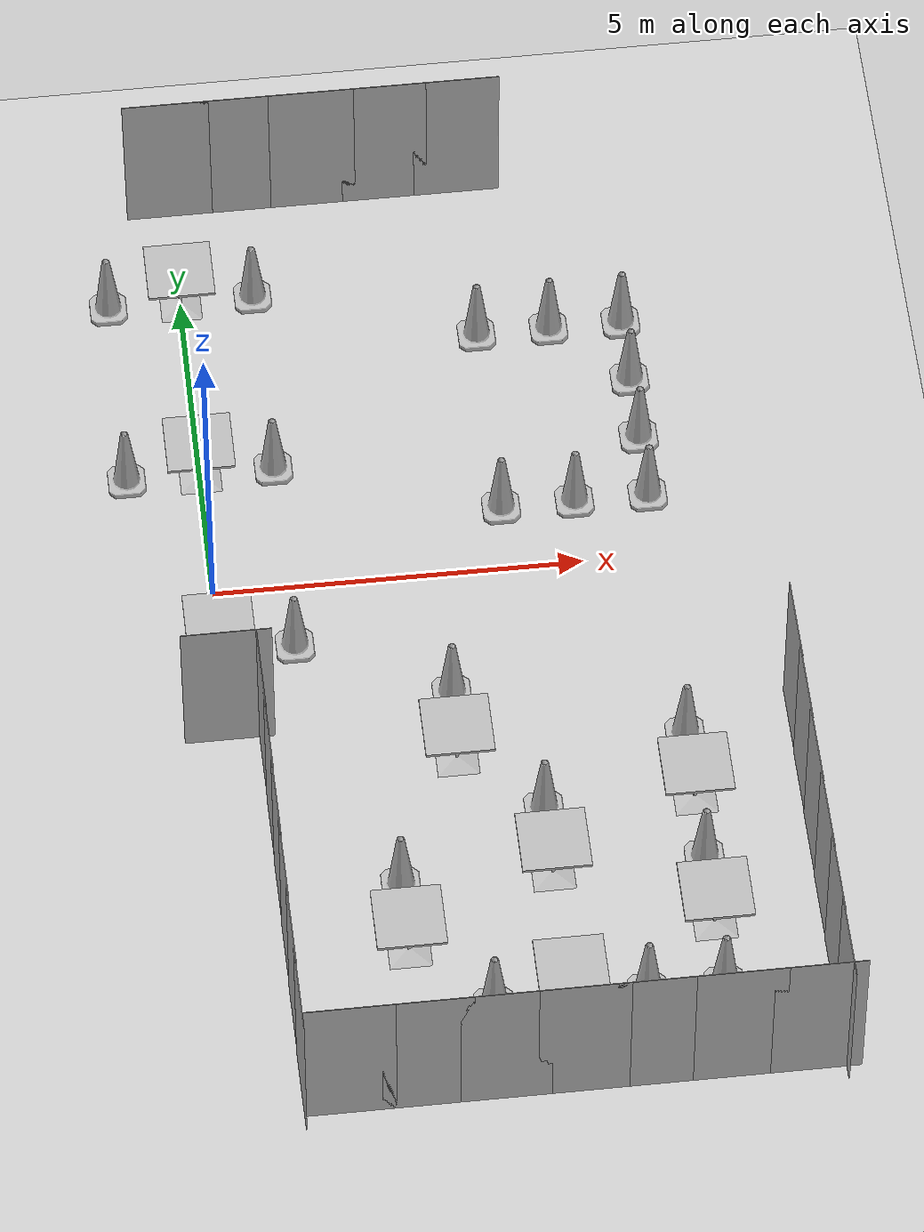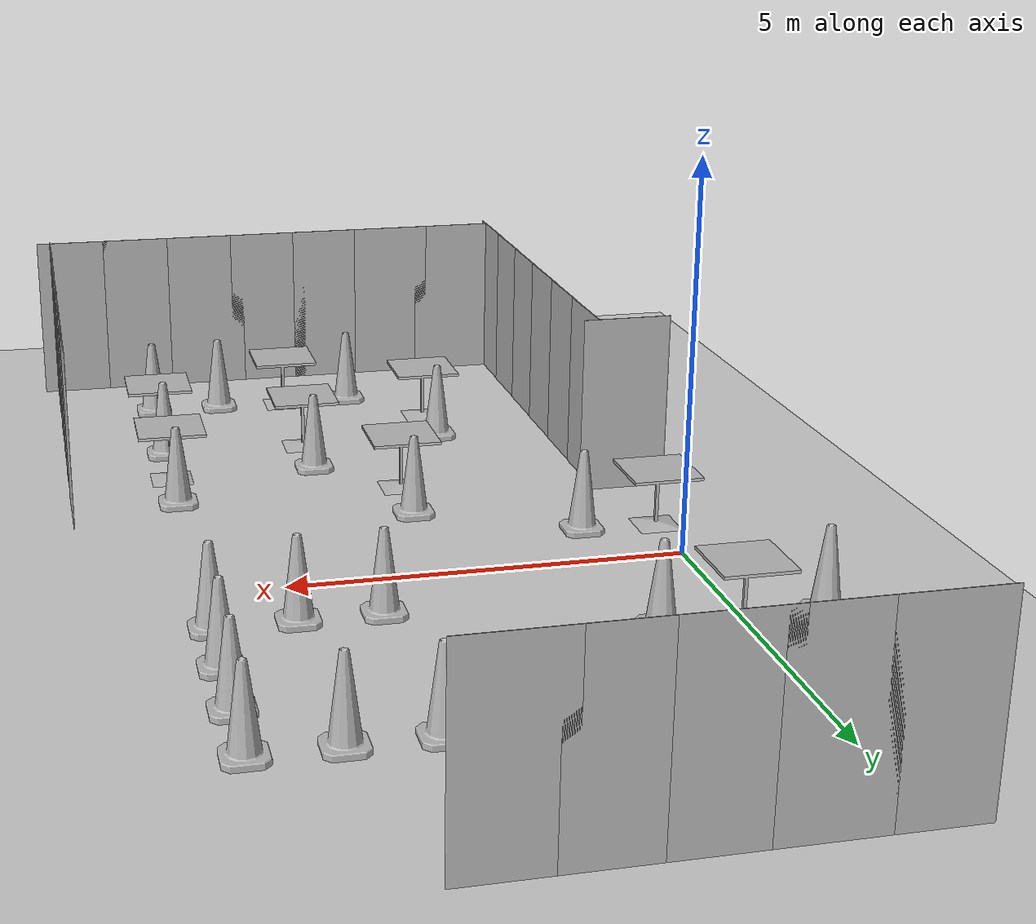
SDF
<sdf version="1.6">
 <world name="default">
  <model name="ground_plane">
   <static>1</static>
   <link name="link">
    <collision name="collision">
     <geometry><plane><normal>0 0 1</normal><size>100 100</size></plane></geometry>
     <surface>
      <contact><collide_bitmask>65535</collide_bitmask></contact>
      <friction><ode><mu>100</mu><mu2>50</mu2></ode></friction>
     </surface>
    </collision>
    <visual name="visual">
     <cast_shadows>0</cast_shadows>
     <geometry><plane><normal>0 0 1</normal><size>100 100</size></plane></geometry>
     <material>
      <script><uri>file://media/materials/scripts/gazebo.material</uri><name>Gazebo/Grey</name></script>
     </material>
    </visual>
   </link>
  </model>
  <model name="cafe_table_clone_0">
   <static>1</static>
   <link name="link">
    <collision name="surface">
     <pose>0 0 0.755 0 -0 0</pose>
     <geometry><box><size>0.913 0.913 0.04</size></box></geometry>
    </collision>
    <collision name="column">
     <pose>0 0 0.37 0 -0 0</pose>
     <geometry><box><size>0.042 0.042 0.74</size></box></geometry>
    </collision>
    <collision name="base">
     <pose>0 0 0.02 0 -0 0</pose>
     <geometry><box><size>0.56 0.56 0.04</size></box></geometry>
    </collision>
    <visual name="visual">
     <geometry><mesh><uri>model://cafe_table/meshes/cafe_table.dae</uri></mesh></geometry>
    </visual>
   </link>
   <pose>0 -1 0 0 -0 0</pose>
  </model>
  <model name="cafe_table_clone_7">
   <static>1</static>
   <link name="link">
    <collision name="surface">
     <pose>0 0 0.755 0 -0 0</pose>
     <geometry><box><size>0.913 0.913 0.04</size></box></geometry>
    </collision>
    <collision name="column">
     <pose>0 0 0.37 0 -0 0</pose>
     <geometry><box><size>0.042 0.042 0.74</size></box></geometry>
    </collision>
    <collision name="base">
     <pose>0 0 0.02 0 -0 0</pose>
     <geometry><box><size>0.56 0.56 0.04</size></box></geometry>
    </collision>
    <visual name="visual">
     <geometry><mesh><uri>model://cafe_table/meshes/cafe_table.dae</uri></mesh></geometry>
    </visual>
   </link>
   <pose>0 2 0 0 -0 0</pose>
  </model>
  <model name="cafe_table_clone_12">
   <static>1</static>
   <link name="link">
    <collision name="surface">
     <pose>0 0 0.755 0 -0 0</pose>
     <geometry><box><size>0.913 0.913 0.04</size></box></geometry>
    </collision>
    <collision name="column">
     <pose>0 0 0.37 0 -0 0</pose>
     <geometry><box><size>0.042 0.042 0.74</size></box></geometry>
    </collision>
    <collision name="base">
     <pose>0 0 0.02 0 -0 0</pose>
     <geometry><box><size>0.56 0.56 0.04</size></box></geometry>
    </collision>
    <visual name="visual">
     <geometry><mesh><uri>model://cafe_table/meshes/cafe_table.dae</uri></mesh></geometry>
    </visual>
   </link>
   <pose>0 5 0 0 -0 0</pose>
  </model>
  <model name="cafe_table_0">
   <static>1</static>
   <link name="link">
    <collision name="surface">
     <pose>0 0 0.755 0 -0 0</pose>
     <geometry><box><size>0.913 0.913 0.04</size></box></geometry>
    </collision>
    <collision name="column">
     <pose>0 0 0.37 0 -0 0</pose>
     <geometry><box><size>0.042 0.042 0.74</size></box></geometry>
    </collision>
    <collision name="base">
     <pose>0 0 0.02 0 -0 0</pose>
     <geometry><box><size>0.56 0.56 0.04</size></box></geometry>
    </collision>
    <visual name="visual">
     <geometry><mesh><uri>model://cafe_table/meshes/cafe_table.dae</uri></mesh></geometry>
    </visual>
   </link>
   <pose>2.95221 -3.03948 0 0 -0 0</pose>
  </model>
  <model name="cafe_table_0_clone">
   <static>1</static>
   <link name="link">
    <collision name="surface">
     <pose>0 0 0.755 0 -0 0</pose>
     <geometry><box><size>0.913 0.913 0.04</size></box></geometry>
    </collision>
    <collision name="column">
     <pose>0 0 0.37 0 -0 0</pose>
     <geometry><box><size>0.042 0.042 0.74</size></box></geometry>
    </collision>
    <collision name="base">
     <pose>0 0 0.02 0 -0 0</pose>
     <geometry><box><size>0.56 0.56 0.04</size></box></geometry>
    </collision>
    <visual name="visual">
     <geometry><mesh><uri>model://cafe_table/meshes/cafe_table.dae</uri></mesh></geometry>
    </visual>
   </link>
   <pose>4 -5 0 0 -0 0</pose>
  </model>
  <model name="cafe_table_0_clone_0">
   <static>1</static>
   <link name="link">
    <collision name="surface">
     <pose>0 0 0.755 0 -0 0</pose>
     <geometry><box><size>0.913 0.913 0.04</size></box></geometry>
    </collision>
    <collision name="column">
     <pose>0 0 0.37 0 -0 0</pose>
     <geometry><box><size>0.042 0.042 0.74</size></box></geometry>
    </collision>
    <collision name="base">
     <pose>0 0 0.02 0 -0 0</pose>
     <geometry><box><size>0.56 0.56 0.04</size></box></geometry>
    </collision>
    <visual name="visual">
     <geometry><mesh><uri>model://cafe_table/meshes/cafe_table.dae</uri></mesh></geometry>
    </visual>
   </link>
   <pose>6 -4 0 0 -0 0</pose>
  </model>
  <model name="cafe_table_0_clone_1">
   <static>1</static>
   <link name="link">
    <collision name="surface">
     <pose>0 0 0.755 0 -0 0</pose>
     <geometry><box><size>0.913 0.913 0.04</size></box></geometry>
    </collision>
    <collision name="column">
     <pose>0 0 0.37 0 -0 0</pose>
     <geometry><box><size>0.042 0.042 0.74</size></box></geometry>
    </collision>
    <collision name="base">
     <pose>0 0 0.02 0 -0 0</pose>
     <geometry><box><size>0.56 0.56 0.04</size></box></geometry>
    </collision>
    <visual name="visual">
     <geometry><mesh><uri>model://cafe_table/meshes/cafe_table.dae</uri></mesh></geometry>
    </visual>
   </link>
   <pose>2 -6 0 0 -0 0</pose>
  </model>
  <model name="cafe_table_0_clone_2">
   <static>1</static>
   <link name="link">
    <collision name="surface">
     <pose>0 0 0.755 0 -0 0</pose>
     <geometry><box><size>0.913 0.913 0.04</size></box></geometry>
    </collision>
    <collision name="column">
     <pose>0 0 0.37 0 -0 0</pose>
     <geometry><box><size>0.042 0.042 0.74</size></box></geometry>
    </collision>
    <collision name="base">
     <pose>0 0 0.02 0 -0 0</pose>
     <geometry><box><size>0.56 0.56 0.04</size></box></geometry>
    </collision>
    <visual name="visual">
     <geometry><mesh><uri>model://cafe_table/meshes/cafe_table.dae</uri></mesh></geometry>
    </visual>
   </link>
   <pose>4 -7 0 0 -0 0</pose>
  </model>
  <model name="cafe_table_0_clone_3">
   <static>1</static>
   <link name="link">
    <collision name="surface">
     <pose>0 0 0.755 0 -0 0</pose>
     <geometry><box><size>0.913 0.913 0.04</size></box></geometry>
    </collision>
    <collision name="column">
     <pose>0 0 0.37 0 -0 0</pose>
     <geometry><box><size>0.042 0.042 0.74</size></box></geometry>
    </collision>
    <collision name="base">
     <pose>0 0 0.02 0 -0 0</pose>
     <geometry><box><size>0.56 0.56 0.04</size></box></geometry>
    </collision>
    <visual name="visual">
     <geometry><mesh><uri>model://cafe_table/meshes/cafe_table.dae</uri></mesh></geometry>
    </visual>
   </link>
   <pose>6 -6 0 0 -0 0</pose>
  </model>
  <model name="nist_maze_wall_240">
   <static>1</static>
   <link name="nist__maze_wall_240_link">
    <collision name="collision">
     <geometry>
      <mesh><uri>model://nist_maze_wall_240/meshes/nist_maze_wall_240.dae</uri><scale>1 1 1</scale></mesh>
     </geometry>
    </collision>
    <visual name="visual">
     <geometry>
      <mesh><uri>model://nist_maze_wall_240/meshes/nist_maze_wall_240.dae</uri><scale>1 1 1</scale></mesh>
     </geometry>
    </visual>
   </link>
   <pose>0 -3 0 0 -0 0</pose>
  </model>
  <model name="nist_maze_wall_240_clone_8_clone_8">
   <static>1</static>
   <link name="nist__maze_wall_240_link">
    <collision name="collision">
     <geometry>
      <mesh><uri>model://nist_maze_wall_240/meshes/nist_maze_wall_240.dae</uri><scale>1 1 1</scale></mesh>
     </geometry>
    </collision>
    <visual name="visual">
     <geometry>
      <mesh><uri>model://nist_maze_wall_240/meshes/nist_maze_wall_240.dae</uri><scale>1 1 1</scale></mesh>
     </geometry>
    </visual>
   </link>
   <pose>0 6 0 0 -0 0</pose>
  </model>
  <model name="nist_maze_wall_240_clone_8_clone_9">
   <static>1</static>
   <link name="nist__maze_wall_240_link">
    <collision name="collision">
     <geometry>
      <mesh><uri>model://nist_maze_wall_240/meshes/nist_maze_wall_240.dae</uri><scale>1 1 1</scale></mesh>
     </geometry>
    </collision>
    <visual name="visual">
     <geometry>
      <mesh><uri>model://nist_maze_wall_240/meshes/nist_maze_wall_240.dae</uri><scale>1 1 1</scale></mesh>
     </geometry>
    </visual>
   </link>
   <pose>1 6 0 0 -0 0</pose>
  </model>
  <model name="nist_maze_wall_240_clone_8_clone_10">
   <static>1</static>
   <link name="nist__maze_wall_240_link">
    <collision name="collision">
     <geometry>
      <mesh><uri>model://nist_maze_wall_240/meshes/nist_maze_wall_240.dae</uri><scale>1 1 1</scale></mesh>
     </geometry>
    </collision>
    <visual name="visual">
     <geometry>
      <mesh><uri>model://nist_maze_wall_240/meshes/nist_maze_wall_240.dae</uri><scale>1 1 1</scale></mesh>
     </geometry>
    </visual>
   </link>
   <pose>2 6 0 0 -0 0</pose>
  </model>
  <model name="nist_maze_wall_240_clone_8_clone_11">
   <static>1</static>
   <link name="nist__maze_wall_240_link">
    <collision name="collision">
     <geometry>
      <mesh><uri>model://nist_maze_wall_240/meshes/nist_maze_wall_240.dae</uri><scale>1 1 1</scale></mesh>
     </geometry>
    </collision>
    <visual name="visual">
     <geometry>
      <mesh><uri>model://nist_maze_wall_240/meshes/nist_maze_wall_240.dae</uri><scale>1 1 1</scale></mesh>
     </geometry>
    </visual>
   </link>
   <pose>3 6 0 0 -0 0</pose>
  </model>
  <model name="nist_maze_wall_240_clone_8_clone_12">
   <static>1</static>
   <link name="nist__maze_wall_240_link">
    <collision name="collision">
     <geometry>
      <mesh><uri>model://nist_maze_wall_240/meshes/nist_maze_wall_240.dae</uri><scale>1 1 1</scale></mesh>
     </geometry>
    </collision>
    <visual name="visual">
     <geometry>
      <mesh><uri>model://nist_maze_wall_240/meshes/nist_maze_wall_240.dae</uri><scale>1 1 1</scale></mesh>
     </geometry>
    </visual>
   </link>
   <pose>4 6 0 0 -0 0</pose>
  </model>
  <model name="nist_maze_wall_240_clone_8_clone_13_clone">
   <static>1</static>
   <link name="nist__maze_wall_240_link">
    <collision name="collision">
     <geometry>
      <mesh><uri>model://nist_maze_wall_240/meshes/nist_maze_wall_240.dae</uri><scale>1 1 1</scale></mesh>
     </geometry>
    </collision>
    <visual name="visual">
     <geometry>
      <mesh><uri>model://nist_maze_wall_240/meshes/nist_maze_wall_240.dae</uri><scale>1 1 1</scale></mesh>
     </geometry>
    </visual>
   </link>
   <pose>1 -3 0 0 -0 1.57853</pose>
  </model>
  <model name="nist_maze_wall_240_clone_8_clone_13_clone_0">
   <static>1</static>
   <link name="nist__maze_wall_240_link">
    <collision name="collision">
     <geometry>
      <mesh><uri>model://nist_maze_wall_240/meshes/nist_maze_wall_240.dae</uri><scale>1 1 1</scale></mesh>
     </geometry>
    </collision>
    <visual name="visual">
     <geometry>
      <mesh><uri>model://nist_maze_wall_240/meshes/nist_maze_wall_240.dae</uri><scale>1 1 1</scale></mesh>
     </geometry>
    </visual>
   </link>
   <pose>1 -4 0 0 -0 1.57853</pose>
  </model>
  <model name="nist_maze_wall_240_clone_8_clone_13_clone_1">
   <static>1</static>
   <link name="nist__maze_wall_240_link">
    <collision name="collision">
     <geometry>
      <mesh><uri>model://nist_maze_wall_240/meshes/nist_maze_wall_240.dae</uri><scale>1 1 1</scale></mesh>
     </geometry>
    </collision>
    <visual name="visual">
     <geometry>
      <mesh><uri>model://nist_maze_wall_240/meshes/nist_maze_wall_240.dae</uri><scale>1 1 1</scale></mesh>
     </geometry>
    </visual>
   </link>
   <pose>1 -5 0 0 -0 1.57853</pose>
  </model>
  <model name="nist_maze_wall_240_clone_8_clone_13_clone_2">
   <static>1</static>
   <link name="nist__maze_wall_240_link">
    <collision name="collision">
     <geometry>
      <mesh><uri>model://nist_maze_wall_240/meshes/nist_maze_wall_240.dae</uri><scale>1 1 1</scale></mesh>
     </geometry>
    </collision>
    <visual name="visual">
     <geometry>
      <mesh><uri>model://nist_maze_wall_240/meshes/nist_maze_wall_240.dae</uri><scale>1 1 1</scale></mesh>
     </geometry>
    </visual>
   </link>
   <pose>1 -6 0 0 -0 1.57853</pose>
  </model>
  <model name="nist_maze_wall_240_clone_8_clone_13_clone_3">
   <static>1</static>
   <link name="nist__maze_wall_240_link">
    <collision name="collision">
     <geometry>
      <mesh><uri>model://nist_maze_wall_240/meshes/nist_maze_wall_240.dae</uri><scale>1 1 1</scale></mesh>
     </geometry>
    </collision>
    <visual name="visual">
     <geometry>
      <mesh><uri>model://nist_maze_wall_240/meshes/nist_maze_wall_240.dae</uri><scale>1 1 1</scale></mesh>
     </geometry>
    </visual>
   </link>
   <pose>1 -7 0 0 -0 1.57853</pose>
  </model>
  <model name="nist_maze_wall_240_clone_8_clone_13_clone_4">
   <static>1</static>
   <link name="nist__maze_wall_240_link">
    <collision name="collision">
     <geometry>
      <mesh><uri>model://nist_maze_wall_240/meshes/nist_maze_wall_240.dae</uri><scale>1 1 1</scale></mesh>
     </geometry>
    </collision>
    <visual name="visual">
     <geometry>
      <mesh><uri>model://nist_maze_wall_240/meshes/nist_maze_wall_240.dae</uri><scale>1 1 1</scale></mesh>
     </geometry>
    </visual>
   </link>
   <pose>1 -8 0 0 -0 1.57853</pose>
  </model>
  <model name="nist_maze_wall_240_clone_8_clone_13_clone_5">
   <static>1</static>
   <link name="nist__maze_wall_240_link">
    <collision name="collision">
     <geometry>
      <mesh><uri>model://nist_maze_wall_240/meshes/nist_maze_wall_240.dae</uri><scale>1 1 1</scale></mesh>
     </geometry>
    </collision>
    <visual name="visual">
     <geometry>
      <mesh><uri>model://nist_maze_wall_240/meshes/nist_maze_wall_240.dae</uri><scale>1 1 1</scale></mesh>
     </geometry>
    </visual>
   </link>
   <pose>8 -3 0 0 -0 1.57853</pose>
  </model>
  <model name="nist_maze_wall_240_clone_8_clone_13_clone_6">
   <static>1</static>
   <link name="nist__maze_wall_240_link">
    <collision name="collision">
     <geometry>
      <mesh><uri>model://nist_maze_wall_240/meshes/nist_maze_wall_240.dae</uri><scale>1 1 1</scale></mesh>
     </geometry>
    </collision>
    <visual name="visual">
     <geometry>
      <mesh><uri>model://nist_maze_wall_240/meshes/nist_maze_wall_240.dae</uri><scale>1 1 1</scale></mesh>
     </geometry>
    </visual>
   </link>
   <pose>8 -4 0 0 -0 1.57853</pose>
  </model>
  <model name="nist_maze_wall_240_clone_8_clone_13_clone_7">
   <static>1</static>
   <link name="nist__maze_wall_240_link">
    <collision name="collision">
     <geometry>
      <mesh><uri>model://nist_maze_wall_240/meshes/nist_maze_wall_240.dae</uri><scale>1 1 1</scale></mesh>
     </geometry>
    </collision>
    <visual name="visual">
     <geometry>
      <mesh><uri>model://nist_maze_wall_240/meshes/nist_maze_wall_240.dae</uri><scale>1 1 1</scale></mesh>
     </geometry>
    </visual>
   </link>
   <pose>8 -5 0 0 -0 1.57853</pose>
  </model>
  <model name="nist_maze_wall_240_clone_8_clone_13_clone_8">
   <static>1</static>
   <link name="nist__maze_wall_240_link">
    <collision name="collision">
     <geometry>
      <mesh><uri>model://nist_maze_wall_240/meshes/nist_maze_wall_240.dae</uri><scale>1 1 1</scale></mesh>
     </geometry>
    </collision>
    <visual name="visual">
     <geometry>
      <mesh><uri>model://nist_maze_wall_240/meshes/nist_maze_wall_240.dae</uri><scale>1 1 1</scale></mesh>
     </geometry>
    </visual>
   </link>
   <pose>8 -6 0 0 -0 1.57853</pose>
  </model>
  <model name="nist_maze_wall_240_clone_8_clone_13_clone_9">
   <static>1</static>
   <link name="nist__maze_wall_240_link">
    <collision name="collision">
     <geometry>
      <mesh><uri>model://nist_maze_wall_240/meshes/nist_maze_wall_240.dae</uri><scale>1 1 1</scale></mesh>
     </geometry>
    </collision>
    <visual name="visual">
     <geometry>
      <mesh><uri>model://nist_maze_wall_240/meshes/nist_maze_wall_240.dae</uri><scale>1 1 1</scale></mesh>
     </geometry>
    </visual>
   </link>
   <pose>8 -7 0 0 -0 1.57853</pose>
  </model>
  <model name="nist_maze_wall_240_clone_8_clone_13_clone_10">
   <static>1</static>
   <link name="nist__maze_wall_240_link">
    <collision name="collision">
     <geometry>
      <mesh><uri>model://nist_maze_wall_240/meshes/nist_maze_wall_240.dae</uri><scale>1 1 1</scale></mesh>
     </geometry>
    </collision>
    <visual name="visual">
     <geometry>
      <mesh><uri>model://nist_maze_wall_240/meshes/nist_maze_wall_240.dae</uri><scale>1 1 1</scale></mesh>
     </geometry>
    </visual>
   </link>
   <pose>8 -8 0 0 -0 1.57853</pose>
  </model>
  <model name="nist_maze_wall_240_clone_clone">
   <static>1</static>
   <link name="nist__maze_wall_240_link">
    <collision name="collision">
     <geometry>
      <mesh><uri>model://nist_maze_wall_240/meshes/nist_maze_wall_240.dae</uri><scale>1 1 1</scale></mesh>
     </geometry>
    </collision>
    <visual name="visual">
     <geometry>
      <mesh><uri>model://nist_maze_wall_240/meshes/nist_maze_wall_240.dae</uri><scale>1 1 1</scale></mesh>
     </geometry>
    </visual>
   </link>
   <pose>1 -9 0 0 -0 0</pose>
  </model>
  <model name="nist_maze_wall_240_clone_clone_0">
   <static>1</static>
   <link name="nist__maze_wall_240_link">
    <collision name="collision">
     <geometry>
      <mesh><uri>model://nist_maze_wall_240/meshes/nist_maze_wall_240.dae</uri><scale>1 1 1</scale></mesh>
     </geometry>
    </collision>
    <visual name="visual">
     <geometry>
      <mesh><uri>model://nist_maze_wall_240/meshes/nist_maze_wall_240.dae</uri><scale>1 1 1</scale></mesh>
     </geometry>
    </visual>
   </link>
   <pose>2 -9 0 0 -0 0</pose>
  </model>
  <model name="nist_maze_wall_240_clone_clone_1">
   <static>1</static>
   <link name="nist__maze_wall_240_link">
    <collision name="collision">
     <geometry>
      <mesh><uri>model://nist_maze_wall_240/meshes/nist_maze_wall_240.dae</uri><scale>1 1 1</scale></mesh>
     </geometry>
    </collision>
    <visual name="visual">
     <geometry>
      <mesh><uri>model://nist_maze_wall_240/meshes/nist_maze_wall_240.dae</uri><scale>1 1 1</scale></mesh>
     </geometry>
    </visual>
   </link>
   <pose>3 -9 0 0 -0 0</pose>
  </model>
  <model name="nist_maze_wall_240_clone_clone_2">
   <static>1</static>
   <link name="nist__maze_wall_240_link">
    <collision name="collision">
     <geometry>
      <mesh><uri>model://nist_maze_wall_240/meshes/nist_maze_wall_240.dae</uri><scale>1 1 1</scale></mesh>
     </geometry>
    </collision>
    <visual name="visual">
     <geometry>
      <mesh><uri>model://nist_maze_wall_240/meshes/nist_maze_wall_240.dae</uri><scale>1 1 1</scale></mesh>
     </geometry>
    </visual>
   </link>
   <pose>4 -9 0 0 -0 0</pose>
  </model>
  <model name="nist_maze_wall_240_clone_clone_3">
   <static>1</static>
   <link name="nist__maze_wall_240_link">
    <collision name="collision">
     <geometry>
      <mesh><uri>model://nist_maze_wall_240/meshes/nist_maze_wall_240.dae</uri><scale>1 1 1</scale></mesh>
     </geometry>
    </collision>
    <visual name="visual">
     <geometry>
      <mesh><uri>model://nist_maze_wall_240/meshes/nist_maze_wall_240.dae</uri><scale>1 1 1</scale></mesh>
     </geometry>
    </visual>
   </link>
   <pose>5 -9 0 0 -0 0</pose>
  </model>
  <model name="nist_maze_wall_240_clone_clone_4">
   <static>1</static>
   <link name="nist__maze_wall_240_link">
    <collision name="collision">
     <geometry>
      <mesh><uri>model://nist_maze_wall_240/meshes/nist_maze_wall_240.dae</uri><scale>1 1 1</scale></mesh>
     </geometry>
    </collision>
    <visual name="visual">
     <geometry>
      <mesh><uri>model://nist_maze_wall_240/meshes/nist_maze_wall_240.dae</uri><scale>1 1 1</scale></mesh>
     </geometry>
    </visual>
   </link>
   <pose>6 -9 0 0 -0 0</pose>
  </model>
  <model name="nist_maze_wall_240_clone_clone_5">
   <static>1</static>
   <link name="nist__maze_wall_240_link">
    <collision name="collision">
     <geometry>
      <mesh><uri>model://nist_maze_wall_240/meshes/nist_maze_wall_240.dae</uri><scale>1 1 1</scale></mesh>
     </geometry>
    </collision>
    <visual name="visual">
     <geometry>
      <mesh><uri>model://nist_maze_wall_240/meshes/nist_maze_wall_240.dae</uri><scale>1 1 1</scale></mesh>
     </geometry>
    </visual>
   </link>
   <pose>7 -9 0 0 -0 0</pose>
  </model>
  <model name="Construction Cone_clone_5">
   <link name="link">
    <collision name="collision">
     <geometry>
      <mesh><scale>10 10 10</scale><uri>model://construction_cone/meshes/construction_cone.dae</uri></mesh>
     </geometry>
    </collision>
    <visual name="visual">
     <geometry>
      <mesh><scale>10 10 10</scale><uri>model://construction_cone/meshes/construction_cone.dae</uri></mesh>
     </geometry>
    </visual>
    <inertial>
     <inertia><ixx>1</ixx><ixy>0</ixy><ixz>0</ixz><iyy>1</iyy><iyz>0</iyz><izz>1</izz></inertia>
     <mass>1</mass>
    </inertial>
   </link>
   <pose>-1 2 -0 0 -0 0</pose>
  </model>
  <model name="Construction Cone_clone_6">
   <link name="link">
    <collision name="collision">
     <geometry>
      <mesh><scale>10 10 10</scale><uri>model://construction_cone/meshes/construction_cone.dae</uri></mesh>
     </geometry>
    </collision>
    <visual name="visual">
     <geometry>
      <mesh><scale>10 10 10</scale><uri>model://construction_cone/meshes/construction_cone.dae</uri></mesh>
     </geometry>
    </visual>
    <inertial>
     <inertia><ixx>1</ixx><ixy>0</ixy><ixz>0</ixz><iyy>1</iyy><iyz>0</iyz><izz>1</izz></inertia>
     <mass>1</mass>
    </inertial>
   </link>
   <pose>-1 5 -0 0 -0 0</pose>
  </model>
  <model name="Construction Cone_clone_12">
   <link name="link">
    <collision name="collision">
     <geometry>
      <mesh><scale>10 10 10</scale><uri>model://construction_cone/meshes/construction_cone.dae</uri></mesh>
     </geometry>
    </collision>
    <visual name="visual">
     <geometry>
      <mesh><scale>10 10 10</scale><uri>model://construction_cone/meshes/construction_cone.dae</uri></mesh>
     </geometry>
    </visual>
    <inertial>
     <inertia><ixx>1</ixx><ixy>0</ixy><ixz>0</ixz><iyy>1</iyy><iyz>0</iyz><izz>1</izz></inertia>
     <mass>1</mass>
    </inertial>
   </link>
   <pose>1 -1 -0 0 -0 0</pose>
  </model>
  <model name="Construction Cone_clone_13">
   <link name="link">
    <collision name="collision">
     <geometry>
      <mesh><scale>10 10 10</scale><uri>model://construction_cone/meshes/construction_cone.dae</uri></mesh>
     </geometry>
    </collision>
    <visual name="visual">
     <geometry>
      <mesh><scale>10 10 10</scale><uri>model://construction_cone/meshes/construction_cone.dae</uri></mesh>
     </geometry>
    </visual>
    <inertial>
     <inertia><ixx>1</ixx><ixy>0</ixy><ixz>0</ixz><iyy>1</iyy><iyz>0</iyz><izz>1</izz></inertia>
     <mass>1</mass>
    </inertial>
   </link>
   <pose>1 2 -0 0 -0 0</pose>
  </model>
  <model name="Construction Cone_clone_14">
   <link name="link">
    <collision name="collision">
     <geometry>
      <mesh><scale>10 10 10</scale><uri>model://construction_cone/meshes/construction_cone.dae</uri></mesh>
     </geometry>
    </collision>
    <visual name="visual">
     <geometry>
      <mesh><scale>10 10 10</scale><uri>model://construction_cone/meshes/construction_cone.dae</uri></mesh>
     </geometry>
    </visual>
    <inertial>
     <inertia><ixx>1</ixx><ixy>0</ixy><ixz>0</ixz><iyy>1</iyy><iyz>0</iyz><izz>1</izz></inertia>
     <mass>1</mass>
    </inertial>
   </link>
   <pose>1 5 -0 0 -0 0</pose>
  </model>
  <model name="Construction Cone_clone_18">
   <link name="link">
    <collision name="collision">
     <geometry>
      <mesh><scale>10 10 10</scale><uri>model://construction_cone/meshes/construction_cone.dae</uri></mesh>
     </geometry>
    </collision>
    <visual name="visual">
     <geometry>
      <mesh><scale>10 10 10</scale><uri>model://construction_cone/meshes/construction_cone.dae</uri></mesh>
     </geometry>
    </visual>
    <inertial>
     <inertia><ixx>1</ixx><ixy>0</ixy><ixz>0</ixz><iyy>1</iyy><iyz>0</iyz><izz>1</izz></inertia>
     <mass>1</mass>
    </inertial>
   </link>
   <pose>3 -2 -0 0 -0 0</pose>
  </model>
  <model name="Construction Cone_clone_19">
   <link name="link">
    <collision name="collision">
     <geometry>
      <mesh><scale>10 10 10</scale><uri>model://construction_cone/meshes/construction_cone.dae</uri></mesh>
     </geometry>
    </collision>
    <visual name="visual">
     <geometry>
      <mesh><scale>10 10 10</scale><uri>model://construction_cone/meshes/construction_cone.dae</uri></mesh>
     </geometry>
    </visual>
    <inertial>
     <inertia><ixx>1</ixx><ixy>0</ixy><ixz>0</ixz><iyy>1</iyy><iyz>0</iyz><izz>1</izz></inertia>
     <mass>1</mass>
    </inertial>
   </link>
   <pose>6 -3 -0 0 -0 0</pose>
  </model>
  <model name="Construction Cone_clone_20">
   <link name="link">
    <collision name="collision">
     <geometry>
      <mesh><scale>10 10 10</scale><uri>model://construction_cone/meshes/construction_cone.dae</uri></mesh>
     </geometry>
    </collision>
    <visual name="visual">
     <geometry>
      <mesh><scale>10 10 10</scale><uri>model://construction_cone/meshes/construction_cone.dae</uri></mesh>
     </geometry>
    </visual>
    <inertial>
     <inertia><ixx>1</ixx><ixy>0</ixy><ixz>0</ixz><iyy>1</iyy><iyz>0</iyz><izz>1</izz></inertia>
     <mass>1</mass>
    </inertial>
   </link>
   <pose>4 -4 -0 -0 -0 -0</pose>
  </model>
  <model name="Construction Cone_clone_21">
   <link name="link">
    <collision name="collision">
     <geometry>
      <mesh><scale>10 10 10</scale><uri>model://construction_cone/meshes/construction_cone.dae</uri></mesh>
     </geometry>
    </collision>
    <visual name="visual">
     <geometry>
      <mesh><scale>10 10 10</scale><uri>model://construction_cone/meshes/construction_cone.dae</uri></mesh>
     </geometry>
    </visual>
    <inertial>
     <inertia><ixx>1</ixx><ixy>0</ixy><ixz>0</ixz><iyy>1</iyy><iyz>0</iyz><izz>1</izz></inertia>
     <mass>1</mass>
    </inertial>
   </link>
   <pose>2 -5 -0 0 -0 0</pose>
  </model>
  <model name="Construction Cone_clone_22">
   <link name="link">
    <collision name="collision">
     <geometry>
      <mesh><scale>10 10 10</scale><uri>model://construction_cone/meshes/construction_cone.dae</uri></mesh>
     </geometry>
    </collision>
    <visual name="visual">
     <geometry>
      <mesh><scale>10 10 10</scale><uri>model://construction_cone/meshes/construction_cone.dae</uri></mesh>
     </geometry>
    </visual>
    <inertial>
     <inertia><ixx>1</ixx><ixy>0</ixy><ixz>0</ixz><iyy>1</iyy><iyz>0</iyz><izz>1</izz></inertia>
     <mass>1</mass>
    </inertial>
   </link>
   <pose>5 -7 -0 0 -0 0</pose>
  </model>
  <model name="Construction Cone_clone_23">
   <link name="link">
    <collision name="collision">
     <geometry>
      <mesh><scale>10 10 10</scale><uri>model://construction_cone/meshes/construction_cone.dae</uri></mesh>
     </geometry>
    </collision>
    <visual name="visual">
     <geometry>
      <mesh><scale>10 10 10</scale><uri>model://construction_cone/meshes/construction_cone.dae</uri></mesh>
     </geometry>
    </visual>
    <inertial>
     <inertia><ixx>1</ixx><ixy>0</ixy><ixz>0</ixz><iyy>1</iyy><iyz>0</iyz><izz>1</izz></inertia>
     <mass>1</mass>
    </inertial>
   </link>
   <pose>3 -7 -0 0 -0 0</pose>
  </model>
  <model name="Construction Cone_clone_24">
   <link name="link">
    <collision name="collision">
     <geometry>
      <mesh><scale>10 10 10</scale><uri>model://construction_cone/meshes/construction_cone.dae</uri></mesh>
     </geometry>
    </collision>
    <visual name="visual">
     <geometry>
      <mesh><scale>10 10 10</scale><uri>model://construction_cone/meshes/construction_cone.dae</uri></mesh>
     </geometry>
    </visual>
    <inertial>
     <inertia><ixx>1</ixx><ixy>0</ixy><ixz>0</ixz><iyy>1</iyy><iyz>0</iyz><izz>1</izz></inertia>
     <mass>1</mass>
    </inertial>
   </link>
   <pose>6 -5 -0 0 -1e-06 0</pose>
  </model>
  <model name="Construction Cone_clone_25">
   <link name="link">
    <collision name="collision">
     <geometry>
      <mesh><scale>10 10 10</scale><uri>model://construction_cone/meshes/construction_cone.dae</uri></mesh>
     </geometry>
    </collision>
    <visual name="visual">
     <geometry>
      <mesh><scale>10 10 10</scale><uri>model://construction_cone/meshes/construction_cone.dae</uri></mesh>
     </geometry>
    </visual>
    <inertial>
     <inertia><ixx>1</ixx><ixy>0</ixy><ixz>0</ixz><iyy>1</iyy><iyz>0</iyz><izz>1</izz></inertia>
     <mass>1</mass>
    </inertial>
   </link>
   <pose>6 -7 -0 0 -0 0</pose>
  </model>
  <model name="Construction Cone_clone_26">
   <link name="link">
    <collision name="collision">
     <geometry>
      <mesh><scale>10 10 10</scale><uri>model://construction_cone/meshes/construction_cone.dae</uri></mesh>
     </geometry>
    </collision>
    <visual name="visual">
     <geometry>
      <mesh><scale>10 10 10</scale><uri>model://construction_cone/meshes/construction_cone.dae</uri></mesh>
     </geometry>
    </visual>
    <inertial>
     <inertia><ixx>1</ixx><ixy>0</ixy><ixz>0</ixz><iyy>1</iyy><iyz>0</iyz><izz>1</izz></inertia>
     <mass>1</mass>
    </inertial>
   </link>
   <pose>5 1 -0 0 -1e-06 0</pose>
  </model>
  <model name="Construction Cone_clone_27">
   <link name="link">
    <collision name="collision">
     <geometry>
      <mesh><scale>10 10 10</scale><uri>model://construction_cone/meshes/construction_cone.dae</uri></mesh>
     </geometry>
    </collision>
    <visual name="visual">
     <geometry>
      <mesh><scale>10 10 10</scale><uri>model://construction_cone/meshes/construction_cone.dae</uri></mesh>
     </geometry>
    </visual>
    <inertial>
     <inertia><ixx>1</ixx><ixy>0</ixy><ixz>0</ixz><iyy>1</iyy><iyz>0</iyz><izz>1</izz></inertia>
     <mass>1</mass>
    </inertial>
   </link>
   <pose>6 1 -0 0 -0 0</pose>
  </model>
  <model name="Construction Cone_clone_28">
   <link name="link">
    <collision name="collision">
     <geometry>
      <mesh><scale>10 10 10</scale><uri>model://construction_cone/meshes/construction_cone.dae</uri></mesh>
     </geometry>
    </collision>
    <visual name="visual">
     <geometry>
      <mesh><scale>10 10 10</scale><uri>model://construction_cone/meshes/construction_cone.dae</uri></mesh>
     </geometry>
    </visual>
    <inertial>
     <inertia><ixx>1</ixx><ixy>0</ixy><ixz>0</ixz><iyy>1</iyy><iyz>0</iyz><izz>1</izz></inertia>
     <mass>1</mass>
    </inertial>
   </link>
   <pose>6 2 -0 0 -0 0</pose>
  </model>
  <model name="Construction Cone_clone_29">
   <link name="link">
    <collision name="collision">
     <geometry>
      <mesh><scale>10 10 10</scale><uri>model://construction_cone/meshes/construction_cone.dae</uri></mesh>
     </geometry>
    </collision>
    <visual name="visual">
     <geometry>
      <mesh><scale>10 10 10</scale><uri>model://construction_cone/meshes/construction_cone.dae</uri></mesh>
     </geometry>
    </visual>
    <inertial>
     <inertia><ixx>1</ixx><ixy>0</ixy><ixz>0</ixz><iyy>1</iyy><iyz>0</iyz><izz>1</izz></inertia>
     <mass>1</mass>
    </inertial>
   </link>
   <pose>6 3 -0 0 -0 0</pose>
  </model>
  <model name="Construction Cone_clone_30">
   <link name="link">
    <collision name="collision">
     <geometry>
      <mesh><scale>10 10 10</scale><uri>model://construction_cone/meshes/construction_cone.dae</uri></mesh>
     </geometry>
    </collision>
    <visual name="visual">
     <geometry>
      <mesh><scale>10 10 10</scale><uri>model://construction_cone/meshes/construction_cone.dae</uri></mesh>
     </geometry>
    </visual>
    <inertial>
     <inertia><ixx>1</ixx><ixy>0</ixy><ixz>0</ixz><iyy>1</iyy><iyz>0</iyz><izz>1</izz></inertia>
     <mass>1</mass>
    </inertial>
   </link>
   <pose>6 4 -0 0 -0 0</pose>
  </model>
  <model name="Construction Cone_clone_31">
   <link name="link">
    <collision name="collision">
     <geometry>
      <mesh><scale>10 10 10</scale><uri>model://construction_cone/meshes/construction_cone.dae</uri></mesh>
     </geometry>
    </collision>
    <visual name="visual">
     <geometry>
      <mesh><scale>10 10 10</scale><uri>model://construction_cone/meshes/construction_cone.dae</uri></mesh>
     </geometry>
    </visual>
    <inertial>
     <inertia><ixx>1</ixx><ixy>0</ixy><ixz>0</ixz><iyy>1</iyy><iyz>0</iyz><izz>1</izz></inertia>
     <mass>1</mass>
    </inertial>
   </link>
   <pose>5 4 -0 0 -1e-06 0</pose>
  </model>
  <model name="Construction Cone_clone_32">
   <link name="link">
    <collision name="collision">
     <geometry>
      <mesh><scale>10 10 10</scale><uri>model://construction_cone/meshes/construction_cone.dae</uri></mesh>
     </geometry>
    </collision>
    <visual name="visual">
     <geometry>
      <mesh><scale>10 10 10</scale><uri>model://construction_cone/meshes/construction_cone.dae</uri></mesh>
     </geometry>
    </visual>
    <inertial>
     <inertia><ixx>1</ixx><ixy>0</ixy><ixz>0</ixz><iyy>1</iyy><iyz>0</iyz><izz>1</izz></inertia>
     <mass>1</mass>
    </inertial>
   </link>
   <pose>4 4 -0 0 -0 0</pose>
  </model>
  <model name="Construction Cone_clone_33">
   <link name="link">
    <collision name="collision">
     <geometry>
      <mesh><scale>10 10 10</scale><uri>model://construction_cone/meshes/construction_cone.dae</uri></mesh>
     </geometry>
    </collision>
    <visual name="visual">
     <geometry>
      <mesh><scale>10 10 10</scale><uri>model://construction_cone/meshes/construction_cone.dae</uri></mesh>
     </geometry>
    </visual>
    <inertial>
     <inertia><ixx>1</ixx><ixy>0</ixy><ixz>0</ixz><iyy>1</iyy><iyz>0</iyz><izz>1</izz></inertia>
     <mass>1</mass>
    </inertial>
   </link>
   <pose>4 1 -0 0 -1e-06 0</pose>
  </model>
 </world>
</sdf>
